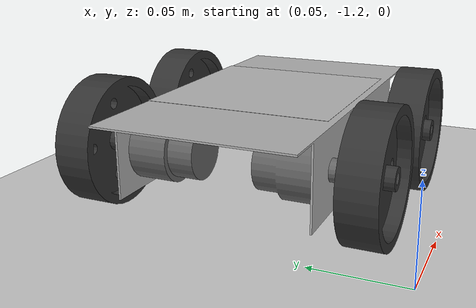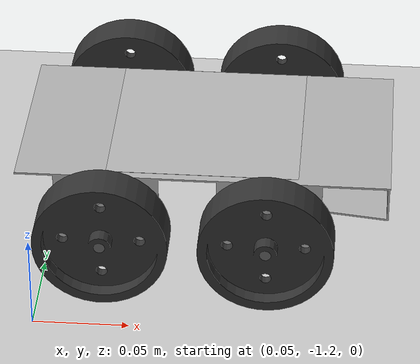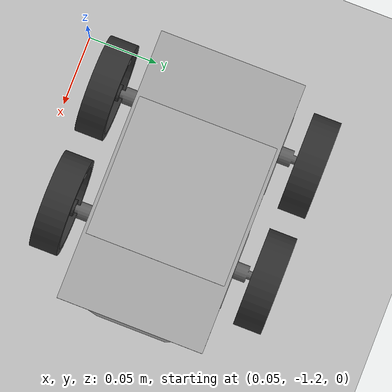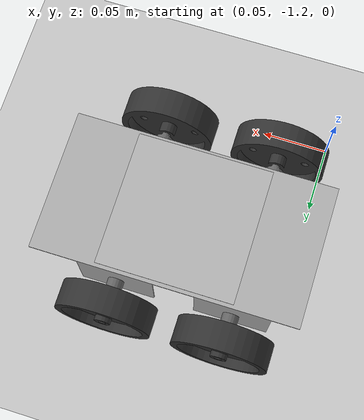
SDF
<?xml version="1.0" ?>
<sdf version="1.5">
  <world name="default">
    <scene>
      <shadows>0</shadows>
      <grid>false</grid>
    </scene>
    <!-- A global light source -->
    <include>
      <uri>model://sun</uri>
    </include>
    <!-- A ground plane -->
    <include>
      <uri>model://ground_plane</uri>
    </include>

    <model name="mobile_robot_base">
      <pose>0.133493 -1.098367 0 0 0 0</pose>
      <include>
        <uri>model://mobile_robot_base</uri>
      </include>
    </model>
  </world>
</sdf>

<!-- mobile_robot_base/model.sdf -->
<sdf version='1.6'>
  <model name='mobile_robot_base'>
    <link name='base_link'>
      <pose frame=''>0 0 0 0 -0 0</pose>
      <inertial>
        <pose frame=''>-0.004391 0 0.038562 0 -0 0</pose>
        <mass>0.165633</mass>
        <inertia>
          <ixx>8.25166e-05</ixx>
          <ixy>6.65224e-11</ixy>
          <ixz>-3.06353e-07</ixz>
          <iyy>0.000148603</iyy>
          <iyz>1.3668e-10</iyz>
          <izz>0.000190467</izz>
        </inertia>
      </inertial>
      <collision name='base_link_collision'>
        <pose frame=''>0 0 0 0 -0 0</pose>
        <geometry>
          <mesh>
            <scale>1 1 1</scale>
            <uri>file://models/mobile_robot_base/meshes/base_link.STL</uri>
          </mesh>
        </geometry>
      </collision>
      <collision name='base_link_fixed_joint_lump__motors_collision_1'>
        <pose frame=''>0.035 0 0.036 1.5708 0 3.14159</pose>
        <geometry>
          <mesh>
            <scale>1 1 1</scale>
            <uri>file://models/mobile_robot_base/meshes/motors.STL</uri>
          </mesh>
        </geometry>
      </collision>
      <visual name='base_link_visual'>
        <pose frame=''>0 0 0 0 -0 0</pose>
        <geometry>
          <mesh>
            <scale>1 1 1</scale>
            <uri>file://models/mobile_robot_base/meshes/base_link.STL</uri>
          </mesh>
        </geometry>
        <material>
          <ambient>0.7 0.7 0.7 1</ambient>
          <diffuse>0.7 0.7 0.7 1</diffuse>
          <specular>0 0 0 0</specular>
          <emissive>0 0 0 1</emissive>
        </material>
      </visual>
      <visual name="visual_april">
        <cast_shadows>false</cast_shadows>
        <pose frame=''>0 0 0.06 0 -0 0</pose>
        <geometry>
          <plane>
            <normal>0 0 1</normal>
            <size>0.1 0.1</size>
          </plane>
        </geometry>
        <material>
          <script>
            <uri>model://mobile_robot_base/materials/scripts</uri>
            <uri>model://mobile_robot_base/materials/textures</uri>
            <name>mobile_robot_base/Image</name>
          </script>
        </material>
      </visual>
      <visual name='base_link_fixed_joint_lump__motors_visual_1'>
        <pose frame=''>0.035 0 0.036 1.5708 0 3.14159</pose>
        <geometry>
          <mesh>
            <scale>1 1 1</scale>
            <uri>file://models/mobile_robot_base/meshes/motors.STL</uri>
          </mesh>
        </geometry>
        <material>
          <ambient>0.4 0.4 0.4 1</ambient>
          <diffuse>0.4 0.4 0.4 1</diffuse>
          <specular>0 0 0 0</specular>
          <emissive>0 0 0 1</emissive>
        </material>
      </visual>
    </link>
    <link name='left_front_wheel'>
      <pose frame=''>0.035 0.0645 0.036 0 -0 0</pose>
      <inertial>
        <pose frame=''>-0 0.01 0 0 -0 0</pose>
        <mass>0.035123</mass>
        <inertia>
          <ixx>1.4693e-05</ixx>
          <ixy>2.2926e-21</ixy>
          <ixz>-3.9204e-22</ixz>
          <iyy>2.7858e-05</iyy>
          <iyz>-7.9353e-25</iyz>
          <izz>1.4693e-05</izz>
        </inertia>
      </inertial>
      <collision name='left_front_wheel_collision'>
        <pose frame=''>0 0 0 0 -0 0</pose>
        <geometry>
          <mesh>
            <scale>1 1 1</scale>
            <uri>file://models/mobile_robot_base/meshes/left_front_wheel.STL</uri>
          </mesh>
        </geometry>
      </collision>
      <visual name='left_front_wheel_visual'>
        <pose frame=''>0 0 0 0 -0 0</pose>
        <geometry>
          <mesh>
            <scale>1 1 1</scale>
            <uri>file://models/mobile_robot_base/meshes/left_front_wheel.STL</uri>
          </mesh>
        </geometry>
        <material>
          <ambient>0.2 0.2 0.2 1</ambient>
          <diffuse>0.2 0.2 0.2 1</diffuse>
          <specular>0 0 0 0</specular>
          <emissive>0 0 0 1</emissive>
        </material>
      </visual>
    </link>
    <joint name='left_front_wheel' type='revolute'>
      <child>left_front_wheel</child>
      <parent>base_link</parent>
      <axis>
        <xyz>0 1 0</xyz>
        <limit>
          <lower>-1e+16</lower>
          <upper>1e+16</upper>
        </limit>
        <dynamics>
          <spring_reference>0</spring_reference>
          <spring_stiffness>0</spring_stiffness>
        </dynamics>
        <use_parent_model_frame>1</use_parent_model_frame>
      </axis>
    </joint>
    <link name='left_rear_wheel'>
      <pose frame=''>-0.05 0.0645 0.036 0 -0 0</pose>
      <inertial>
        <pose frame=''>0 0.01 0 0 -0 0</pose>
        <mass>0.035123</mass>
        <inertia>
          <ixx>1.4693e-05</ixx>
          <ixy>1.1418e-21</ixy>
          <ixz>-3.9204e-22</ixz>
          <iyy>2.7858e-05</iyy>
          <iyz>-1.4418e-24</iyz>
          <izz>1.4693e-05</izz>
        </inertia>
      </inertial>
      <collision name='left_rear_wheel_collision'>
        <pose frame=''>0 0 0 0 -0 0</pose>
        <geometry>
          <mesh>
            <scale>1 1 1</scale>
            <uri>file://models/mobile_robot_base/meshes/left_rear_wheel.STL</uri>
          </mesh>
        </geometry>
      </collision>
      <visual name='left_rear_wheel_visual'>
        <pose frame=''>0 0 0 0 -0 0</pose>
        <geometry>
          <mesh>
            <scale>1 1 1</scale>
            <uri>file://models/mobile_robot_base/meshes/left_rear_wheel.STL</uri>
          </mesh>
        </geometry>
        <material>
          <ambient>0.2 0.2 0.2 1</ambient>
          <diffuse>0.2 0.2 0.2 1</diffuse>
          <specular>0 0 0 0</specular>
          <emissive>0 0 0 1</emissive>
        </material>
      </visual>
    </link>
    <joint name='left_rear_wheel' type='revolute'>
      <child>left_rear_wheel</child>
      <parent>base_link</parent>
      <axis>
        <xyz>0 1 0</xyz>
        <limit>
          <lower>-1e+16</lower>
          <upper>1e+16</upper>
        </limit>
        <dynamics>
          <spring_reference>0</spring_reference>
          <spring_stiffness>0</spring_stiffness>
        </dynamics>
        <use_parent_model_frame>1</use_parent_model_frame>
      </axis>
    </joint>
    <link name='right_front_wheel'>
      <pose frame=''>0.035 -0.0645 0.036 0 -0 0</pose>
      <inertial>
        <pose frame=''>-0 -0.01 0 0 -0 0</pose>
        <mass>0.035123</mass>
        <inertia>
          <ixx>1.4693e-05</ixx>
          <ixy>1.9903e-21</ixy>
          <ixz>-3.9204e-22</ixz>
          <iyy>2.7858e-05</iyy>
          <iyz>-2.4827e-25</iyz>
          <izz>1.4693e-05</izz>
        </inertia>
      </inertial>
      <collision name='right_front_wheel_collision'>
        <pose frame=''>0 0 0 0 -0 0</pose>
        <geometry>
          <mesh>
            <scale>1 1 1</scale>
            <uri>file://models/mobile_robot_base/meshes/right_front_wheel.STL</uri>
          </mesh>
        </geometry>
      </collision>
      <visual name='right_front_wheel_visual'>
        <pose frame=''>0 0 0 0 -0 0</pose>
        <geometry>
          <mesh>
            <scale>1 1 1</scale>
            <uri>file://models/mobile_robot_base/meshes/right_front_wheel.STL</uri>
          </mesh>
        </geometry>
        <material>
          <ambient>0.2 0.2 0.2 1</ambient>
          <diffuse>0.2 0.2 0.2 1</diffuse>
          <specular>0 0 0 0</specular>
          <emissive>0 0 0 1</emissive>
        </material>
      </visual>
    </link>
    <joint name='right_front_wheel' type='revolute'>
      <child>right_front_wheel</child>
      <parent>base_link</parent>
      <axis>
        <xyz>0 1 0</xyz>
        <limit>
          <lower>-1e+16</lower>
          <upper>1e+16</upper>
        </limit>
        <dynamics>
          <spring_reference>0</spring_reference>
          <spring_stiffness>0</spring_stiffness>
        </dynamics>
        <use_parent_model_frame>1</use_parent_model_frame>
      </axis>
    </joint>
    <link name='right_rear_wheel'>
      <pose frame=''>-0.05 -0.0645 0.036 0 -0 0</pose>
      <inertial>
        <pose frame=''>0 -0.01 0 0 -0 0</pose>
        <mass>0.035123</mass>
        <inertia>
          <ixx>1.4693e-05</ixx>
          <ixy>1.1418e-21</ixy>
          <ixz>-3.9204e-22</ixz>
          <iyy>2.7858e-05</iyy>
          <iyz>-1.4418e-24</iyz>
          <izz>1.4693e-05</izz>
        </inertia>
      </inertial>
      <collision name='right_rear_wheel_collision'>
        <pose frame=''>0 0 0 0 -0 0</pose>
        <geometry>
          <mesh>
            <scale>1 1 1</scale>
            <uri>file://models/mobile_robot_base/meshes/right_rear_wheel.STL</uri>
          </mesh>
        </geometry>
      </collision>
      <visual name='right_rear_wheel_visual'>
        <pose frame=''>0 0 0 0 -0 0</pose>
        <geometry>
          <mesh>
            <scale>1 1 1</scale>
            <uri>file://models/mobile_robot_base/meshes/right_rear_wheel.STL</uri>
          </mesh>
        </geometry>
        <material>
          <ambient>0.2 0.2 0.2 1</ambient>
          <diffuse>0.2 0.2 0.2 1</diffuse>
          <specular>0 0 0 0</specular>
          <emissive>0 0 0 1</emissive>
        </material>
      </visual>
    </link>
    <joint name='right_rear_wheel' type='revolute'>
      <child>right_rear_wheel</child>
      <parent>base_link</parent>
      <axis>
        <xyz>0 1 0</xyz>
        <limit>
          <lower>-1e+16</lower>
          <upper>1e+16</upper>
        </limit>
        <dynamics>
          <spring_reference>0</spring_reference>
          <spring_stiffness>0</spring_stiffness>
        </dynamics>
        <use_parent_model_frame>1</use_parent_model_frame>
      </axis>
    </joint>
    <plugin name='skid_steer_drive_controller' filename='libgazebo_ros_skid_steer_drive.so'>
      <updateRate>100.0</updateRate>
      <robotNamespace>/</robotNamespace>
      <leftFrontJoint>left_front_wheel</leftFrontJoint>
      <rightFrontJoint>right_front_wheel</rightFrontJoint>
      <leftRearJoint>left_rear_wheel</leftRearJoint>
      <rightRearJoint>right_rear_wheel</rightRearJoint>
      <wheelSeparation>0.129</wheelSeparation>
      <wheelDiameter>0.07</wheelDiameter>
      <robotBaseFrame>base_link</robotBaseFrame>
      <torque>20</torque>
      <topicName>cmd_vel</topicName>
      <broadcastTF>false</broadcastTF>
    </plugin>
  </model>
</sdf>
